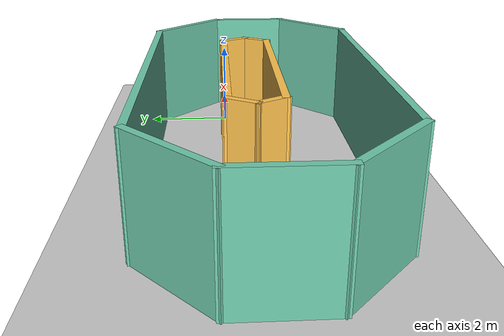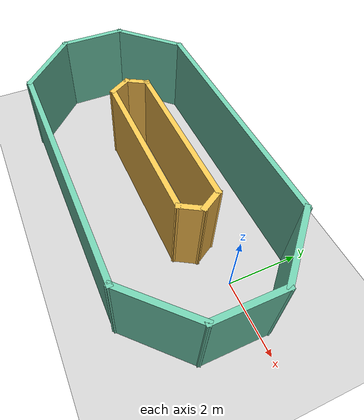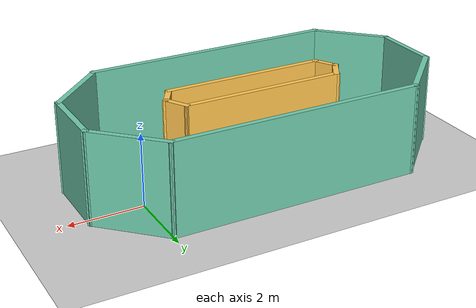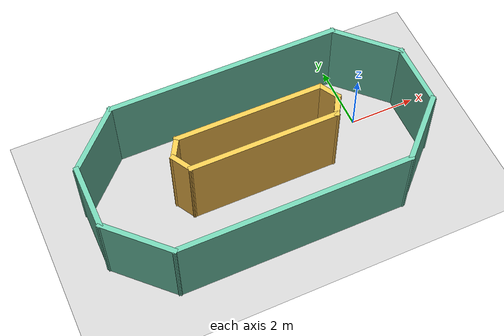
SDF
<sdf version="1.6">
 <world name="default">
  <light name="sun" type="directional">
   <pose>0 0 10 0 -0 0</pose>
   <diffuse>0.8 0.8 0.8 1</diffuse>
   <specular>0.2 0.2 0.2 1</specular>
   <attenuation>
    <range>1000</range>
    <constant>0.9</constant>
    <linear>0.01</linear>
    <quadratic>0.001</quadratic>
   </attenuation>
   <direction>-0.5 0.1 -0.9</direction>
  </light>
  <model name="ground_plane">
   <static>1</static>
   <link name="link">
    <collision name="collision">
     <geometry><plane><normal>0 0 1</normal><size>100 100</size></plane></geometry>
     <surface><friction><ode><mu>100</mu><mu2>50</mu2></ode></friction></surface>
    </collision>
    <visual name="visual">
     <cast_shadows>0</cast_shadows>
     <geometry><plane><normal>0 0 1</normal><size>100 100</size></plane></geometry>
     <material>
      <script><uri>file://media/materials/scripts/gazebo.material</uri><name>Gazebo/Grey</name></script>
     </material>
    </visual>
   </link>
  </model>
  <gravity>0 0 -9.8</gravity>
  <magnetic_field>6e-06 2.3e-05 -4.2e-05</magnetic_field>
  <atmosphere type="adiabatic"/>
  <physics name="default_physics" default="0" type="ode">
   <max_step_size>0.001</max_step_size>
   <real_time_factor>1</real_time_factor>
   <real_time_update_rate>1000</real_time_update_rate>
  </physics>
  <scene><ambient>0.4 0.4 0.4 1</ambient><background>0.7 0.7 0.7 1</background><shadows>1</shadows></scene>
  <spherical_coordinates>
   <surface_model>EARTH_WGS84</surface_model>
   <latitude_deg>0</latitude_deg>
   <longitude_deg>0</longitude_deg>
   <elevation>0</elevation>
   <heading_deg>0</heading_deg>
  </spherical_coordinates>
  <model name="race_track">
   <pose>-3.45473 -0.717102 0 0 -0 0</pose>
   <link name="Wall_0">
    <collision name="Wall_0_Collision">
     <geometry><box><size>7 0.15 2.5</size></box></geometry>
     <pose>0 0 1.25 0 -0 0</pose>
    </collision>
    <visual name="Wall_0_Visual">
     <pose>0 0 1.25 0 -0 0</pose>
     <geometry><box><size>7 0.15 2.5</size></box></geometry>
     <material>
      <script><uri>file://media/materials/scripts/gazebo.material</uri><name>Gazebo/Grey</name></script>
      <ambient>0.435294 0.796078 0.67451 1</ambient>
     </material>
     <meta><layer>0</layer></meta>
    </visual>
    <pose>0 2.40992 0 0 -0 3.14159</pose>
   </link>
   <link name="Wall_1">
    <collision name="Wall_1_Collision">
     <geometry><box><size>2.25 0.15 2.5</size></box></geometry>
     <pose>0 0 1.25 0 -0 0</pose>
    </collision>
    <visual name="Wall_1_Visual">
     <pose>0 0 1.25 0 -0 0</pose>
     <geometry><box><size>2.25 0.15 2.5</size></box></geometry>
     <material>
      <script><uri>file://media/materials/scripts/gazebo.material</uri><name>Gazebo/Grey</name></script>
      <ambient>0.435294 0.796078 0.67451 1</ambient>
     </material>
     <meta><layer>0</layer></meta>
    </visual>
    <pose>-4.16746 1.66746 0 0 0 -2.35619</pose>
   </link>
   <link name="Wall_12">
    <collision name="Wall_12_Collision">
     <geometry><box><size>4.5 0.15 2.5</size></box></geometry>
     <pose>0 0 1.25 0 -0 0</pose>
    </collision>
    <visual name="Wall_12_Visual">
     <pose>0 0 1.25 0 -0 0</pose>
     <geometry><box><size>4.5 0.15 2.5</size></box></geometry>
     <material>
      <script><uri>file://media/materials/scripts/gazebo.material</uri><name>Gazebo/Grey</name></script>
      <ambient>1 0.764706 0.305882 1</ambient>
     </material>
     <meta><layer>0</layer></meta>
    </visual>
    <pose>0.0574 0.741599 0 0 -0 0</pose>
   </link>
   <link name="Wall_13">
    <collision name="Wall_13_Collision">
     <geometry><box><size>0.75 0.15 2.5</size></box></geometry>
     <pose>0 0 1.25 0 -0 0</pose>
    </collision>
    <visual name="Wall_13_Visual">
     <pose>0 0 1.25 0 -0 0</pose>
     <geometry><box><size>0.75 0.15 2.5</size></box></geometry>
     <material>
      <script><uri>file://media/materials/scripts/gazebo.material</uri><name>Gazebo/Grey</name></script>
      <ambient>1 0.764706 0.305882 1</ambient>
     </material>
     <meta><layer>0</layer></meta>
    </visual>
    <pose>2.3824 0.481792 0 0 0 -1.0472</pose>
   </link>
   <link name="Wall_14">
    <collision name="Wall_14_Collision">
     <geometry><box><size>0.75 0.15 2.5</size></box></geometry>
     <pose>0 0 1.25 0 -0 0</pose>
    </collision>
    <visual name="Wall_14_Visual">
     <pose>0 0 1.25 0 -0 0</pose>
     <geometry><box><size>0.75 0.15 2.5</size></box></geometry>
     <material>
      <script><uri>file://media/materials/scripts/gazebo.material</uri><name>Gazebo/Grey</name></script>
      <ambient>1 0.764706 0.305882 1</ambient>
     </material>
     <meta><layer>0</layer></meta>
    </visual>
    <pose>2.3822 -0.038046 0 0 0 -2.0946</pose>
   </link>
   <link name="Wall_15">
    <collision name="Wall_15_Collision">
     <geometry><box><size>4.5 0.15 2.5</size></box></geometry>
     <pose>0 0 1.25 0 -0 0</pose>
    </collision>
    <visual name="Wall_15_Visual">
     <pose>0 0 1.25 0 -0 0</pose>
     <geometry><box><size>4.5 0.15 2.5</size></box></geometry>
     <material>
      <script><uri>file://media/materials/scripts/gazebo.material</uri><name>Gazebo/Grey</name></script>
      <ambient>1 0.764706 0.305882 1</ambient>
     </material>
     <meta><layer>0</layer></meta>
    </visual>
    <pose>0.057 -0.298076 0 0 -0 3.14159</pose>
   </link>
   <link name="Wall_16">
    <collision name="Wall_16_Collision">
     <geometry><box><size>0.75 0.15 2.5</size></box></geometry>
     <pose>0 0 1.25 0 -0 0</pose>
    </collision>
    <visual name="Wall_16_Visual">
     <pose>0 0 1.25 0 -0 0</pose>
     <geometry><box><size>0.75 0.15 2.5</size></box></geometry>
     <material>
      <script><uri>file://media/materials/scripts/gazebo.material</uri><name>Gazebo/Grey</name></script>
      <ambient>1 0.764706 0.305882 1</ambient>
     </material>
     <meta><layer>0</layer></meta>
    </visual>
    <pose>-2.2678 -0.038046 0 0 -0 2.09345</pose>
   </link>
   <link name="Wall_17">
    <collision name="Wall_17_Collision">
     <geometry><box><size>0.75 0.15 2.5</size></box></geometry>
     <pose>0 0 1.25 0 -0 0</pose>
    </collision>
    <visual name="Wall_17_Visual">
     <pose>0 0 1.25 0 -0 0</pose>
     <geometry><box><size>0.75 0.15 2.5</size></box></geometry>
     <material>
      <script><uri>file://media/materials/scripts/gazebo.material</uri><name>Gazebo/Grey</name></script>
      <ambient>1 0.764706 0.305882 1</ambient>
     </material>
     <meta><layer>0</layer></meta>
    </visual>
    <pose>-2.2676 0.481792 0 0 -0 1.0472</pose>
   </link>
   <link name="Wall_2">
    <collision name="Wall_2_Collision">
     <geometry><box><size>2 0.15 2.5</size></box></geometry>
     <pose>0 0 1.25 0 -0 0</pose>
    </collision>
    <visual name="Wall_2_Visual">
     <pose>0 0 1.25 0 -0 0</pose>
     <geometry><box><size>2 0.15 2.5</size></box></geometry>
     <material>
      <script><uri>file://media/materials/scripts/gazebo.material</uri><name>Gazebo/Grey</name></script>
      <ambient>0.435294 0.796078 0.67451 1</ambient>
     </material>
     <meta><layer>0</layer></meta>
    </visual>
    <pose>-4.90992 0 0 0 0 -1.5708</pose>
   </link>
   <link name="Wall_4">
    <collision name="Wall_4_Collision">
     <geometry><box><size>2.25 0.15 2.5</size></box></geometry>
     <pose>0 0 1.25 0 -0 0</pose>
    </collision>
    <visual name="Wall_4_Visual">
     <pose>0 0 1.25 0 -0 0</pose>
     <geometry><box><size>2.25 0.15 2.5</size></box></geometry>
     <material>
      <script><uri>file://media/materials/scripts/gazebo.material</uri><name>Gazebo/Grey</name></script>
      <ambient>0.435294 0.796078 0.67451 1</ambient>
     </material>
     <meta><layer>0</layer></meta>
    </visual>
    <pose>-4.16746 -1.66746 0 0 0 -0.785398</pose>
   </link>
   <link name="Wall_5">
    <collision name="Wall_5_Collision">
     <geometry><box><size>7 0.15 2.5</size></box></geometry>
     <pose>0 0 1.25 0 -0 0</pose>
    </collision>
    <visual name="Wall_5_Visual">
     <pose>0 0 1.25 0 -0 0</pose>
     <geometry><box><size>7 0.15 2.5</size></box></geometry>
     <material>
      <script><uri>file://media/materials/scripts/gazebo.material</uri><name>Gazebo/Grey</name></script>
      <ambient>0.435294 0.796078 0.67451 1</ambient>
     </material>
     <meta><layer>0</layer></meta>
    </visual>
    <pose>0 -2.40992 0 0 -0 0</pose>
   </link>
   <link name="Wall_6">
    <collision name="Wall_6_Collision">
     <geometry><box><size>2.25 0.15 2.5</size></box></geometry>
     <pose>0 0 1.25 0 -0 0</pose>
    </collision>
    <visual name="Wall_6_Visual">
     <pose>0 0 1.25 0 -0 0</pose>
     <geometry><box><size>2.25 0.15 2.5</size></box></geometry>
     <material>
      <script><uri>file://media/materials/scripts/gazebo.material</uri><name>Gazebo/Grey</name></script>
      <ambient>0.435294 0.796078 0.67451 1</ambient>
     </material>
     <meta><layer>0</layer></meta>
    </visual>
    <pose>4.16746 -1.66746 0 0 -0 0.785398</pose>
   </link>
   <link name="Wall_7">
    <collision name="Wall_7_Collision">
     <geometry><box><size>2 0.15 2.5</size></box></geometry>
     <pose>0 0 1.25 0 -0 0</pose>
    </collision>
    <visual name="Wall_7_Visual">
     <pose>0 0 1.25 0 -0 0</pose>
     <geometry><box><size>2 0.15 2.5</size></box></geometry>
     <material>
      <script><uri>file://media/materials/scripts/gazebo.material</uri><name>Gazebo/Grey</name></script>
      <ambient>0.435294 0.796078 0.67451 1</ambient>
     </material>
     <meta><layer>0</layer></meta>
    </visual>
    <pose>4.90992 0 0 0 -0 1.5708</pose>
   </link>
   <link name="Wall_8">
    <collision name="Wall_8_Collision">
     <geometry><box><size>2.25 0.15 2.5</size></box></geometry>
     <pose>0 0 1.25 0 -0 0</pose>
    </collision>
    <visual name="Wall_8_Visual">
     <pose>0 0 1.25 0 -0 0</pose>
     <geometry><box><size>2.25 0.15 2.5</size></box></geometry>
     <material>
      <script><uri>file://media/materials/scripts/gazebo.material</uri><name>Gazebo/Grey</name></script>
      <ambient>0.435294 0.796078 0.67451 1</ambient>
     </material>
     <meta><layer>0</layer></meta>
    </visual>
    <pose>4.16746 1.66746 0 0 -0 2.35619</pose>
   </link>
   <static>1</static>
  </model>
 </world>
</sdf>
